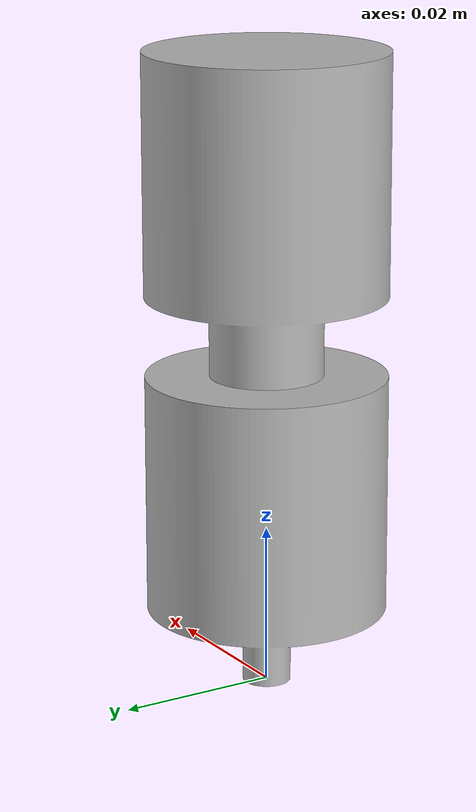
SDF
<?xml version='1.0'?>
<sdf version="1.4">
<model name="stampcover_model">
  <pose>0 0 0 0 0 0</pose>
    <link name="link">
      <inertial>
        <mass>0.012</mass>
        <inertia>
          <ixx>0.0</ixx>
          <ixy>0.0</ixy>
          <ixz>0.0</ixz>
          <iyy>0.0</iyy>
          <iyz>0.0</iyz>
          <izz>0.0</izz>
        </inertia>
      </inertial>
      <collision name="collision">
        <geometry>
          <mesh>
            <uri>model://stampcover_model/stampcover.dae</uri>
          </mesh>
        </geometry>
      </collision>
      <visual name="visual">
        <geometry>
          <mesh>
            <uri>model://stampcover_model/stampcover.dae</uri>
          </mesh>
        </geometry>
      </visual>
    </link>
  </model>
</sdf>
